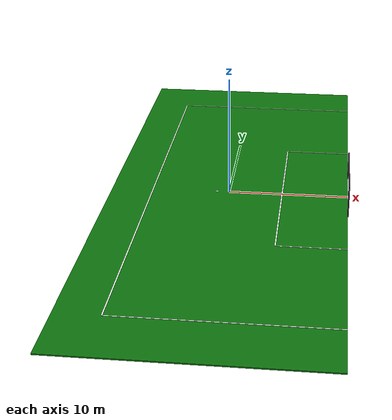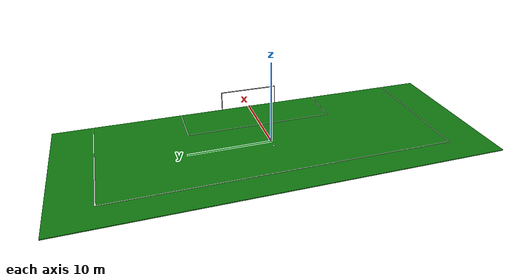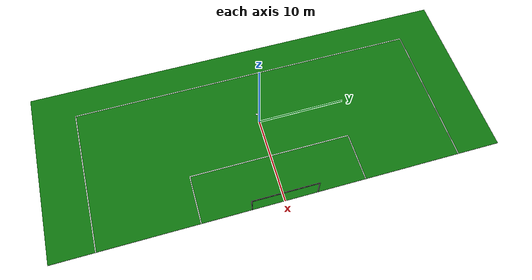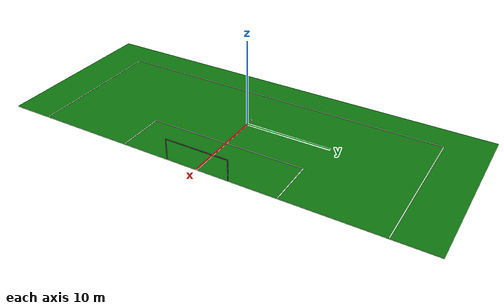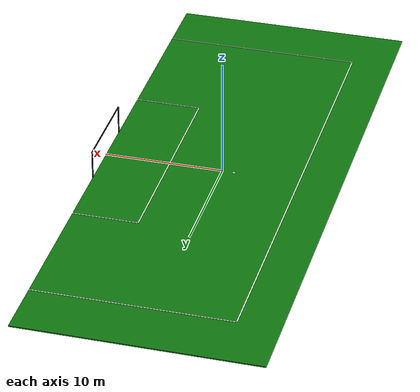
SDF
<?xml version="1.0" ?>
<sdf version="1.9">

  <world name="goalkeeper_world">

    <!-- Physics settings -->
    <physics name="default_physics" type="ode">
        <!-- Use ode physics engine -->
        <max_step_size>0.001</max_step_size>
        <real_time_factor>1.0</real_time_factor>
    </physics>

    <!-- Main light source -->
    <light type="directional" name="sun">
        <cast_shadows>true</cast_shadows>

        <!-- place the light source -->
        <pose>0 0 10 0 0 0</pose>

        <diffuse>0.8 0.8 0.8 1</diffuse>
        <specular>0.2 0.2 0.2 1</specular>
        <direction>-0.5 0.1 -0.9</direction>

    </light>

    <model name="soccer_field">
        <static>true</static>

        <link name="field_link">

            <collision name="field_collision">
                <geometry>
                    <box>
                        <!-- size of the court -->
                        <size>20 50 0.1</size>
                    </box>
                </geometry>
            </collision>

            <visual name="field_visual">
                <geometry>
                    <box>
                        <size>20 50 0.1</size>
                    </box>
                </geometry>

                <material>
                    <!-- RGB alpha -->
                    <ambient>0.05 0.45 0.05 1</ambient>
                    <diffuse>0.05 0.45 0.05 1</diffuse>
                </material>
            </visual>

            <pose>0 0 -0.05 0 0 0</pose>
        </link>
    </model>

    <model name="goal">
        <static>true</static>
        <pose>10 0 0 0 0 0</pose>

        <link name="left_post">
            <pose>0 3.66 1.22 0 0 0</pose>

            <collision name="left_post_collision">
                <geometry>
                    <cylinder>
                        <radius>0.06</radius>
                        <length>2.44</length>
                    </cylinder>
                </geometry>
            </collision>

            <visual name="left_post_visual">
                <geometry>
                    <cylinder>
                        <radius>0.06</radius>
                        <length>2.44</length>
                    </cylinder>
                </geometry>

                <material>
                    <ambient>0 0 0 1</ambient>
                    <diffuse>0 0 0 1</diffuse>
                </material>
            </visual>
        </link>

        <link name="right_post">
            <pose>0 -3.66 1.22 0 0 0</pose>

            <collision name="right_post_collision">
                <geometry>
                    <cylinder>
                        <radius>0.06</radius>
                        <length>2.44</length>
                    </cylinder>
                </geometry>
            </collision>

            <visual name="right_post_visual">
                <geometry>
                    <cylinder>
                        <radius>0.06</radius>
                        <length>2.44</length>
                    </cylinder>
                </geometry>

                <material>
                    <ambient>0 0 0 1</ambient>
                    <diffuse>0 0 0 1</diffuse>
                </material>
            </visual>
        </link>

        <link name="crossbar">
            <!-- rotate 90° -->
            <pose>0 0 2.44 1.5708 0 0</pose>
            <collision name="crossbar_collision">
                <geometry>
                    <cylinder>
                        <radius>0.06</radius>
                        <length>7.32</length>
                    </cylinder>
                </geometry>
            </collision>

            <visual name="crossbar_visual">
                <geometry>
                    <cylinder>
                        <radius>0.06</radius>
                        <length>7.32</length>
                    </cylinder>
                </geometry>

                <material>
                    <ambient>0 0 0 1</ambient>
                    <diffuse>0 0 0 1</diffuse>
                </material>
            </visual>
        </link>
    </model>

    <model name="field_marking">
        <static>true</static>

        <link name="markings_link">

            <visual name="penalty_area_front">
                <geometry>
                    <box>
                        <size>0.1 40.32 0.01</size>
                    </box>
                </geometry>
                <material>
                    <ambient>1 1 1 1</ambient>
                    <diffuse>1 1 1 1</diffuse>
                </material>
                <pose>-6.5 0 0.006 0 0 0</pose>
            </visual>

            <visual name="penalty_area_left">
                <geometry>
                    <box>
                        <size>16.5 0.1 0.01</size>
                    </box>
                </geometry>
                <material>
                    <ambient>1 1 1 1</ambient>
                    <diffuse>1 1 1 1</diffuse>
                </material>
                <pose>1.75 20.16 0.006 0 0 0</pose>
            </visual>

            <visual name="penalty_area_right">
                <geometry>
                    <box>
                        <size>16.5 0.1 0.01</size>
                    </box>
                </geometry>
                <material>
                    <ambient>1 1 1 1</ambient>
                    <diffuse>1 1 1 1</diffuse>
                </material>
                <pose>1.75 -20.16 0.006 0 0 0</pose>
            </visual>

            <visual name="goal_area_front">
                <geometry>
                    <box>
                        <size>0.1 18.32 0.01</size>
                    </box>
                </geometry>
                <material>
                    <ambient>1 1 1 1</ambient>
                    <diffuse>1 1 1 1</diffuse>
                </material>
                <pose>4.5 0 0.006 0 0 0</pose>
            </visual>

            <visual name="goal_area_left">
                <geometry>
                    <box>
                        <size>5.5 0.1 0.01</size>
                    </box>
                </geometry>
                <material>
                    <ambient>1 1 1 1</ambient>
                    <diffuse>1 1 1 1</diffuse>
                </material>
                <pose>7.25 9.16 0.006 0 0 0</pose>
            </visual>

            <visual name="goal_area_right">
                <geometry>
                    <box>
                        <size>5.5 0.1 0.01</size>
                    </box>
                </geometry>
                <material>
                    <ambient>1 1 1 1</ambient>
                    <diffuse>1 1 1 1</diffuse>
                </material>
                <pose>7.25 -9.16 0.006 0 0 0</pose>
            </visual>

            <visual name="penalty_spot">
                <geometry>
                    <cylinder>
                        <radius>0.12</radius>
                        <length>0.01</length>
                    </cylinder>
                </geometry>

                <material>
                    <ambient>1 1 1 1</ambient>
                    <diffuse>1 1 1 1</diffuse>
                </material>
                <pose>-1 0 0.006 0 0 0</pose>
            </visual>
        </link>
    </model>

  </world>

</sdf>
